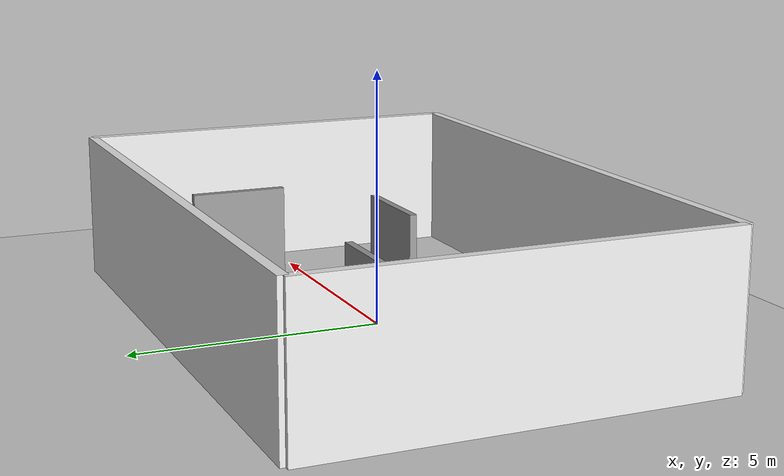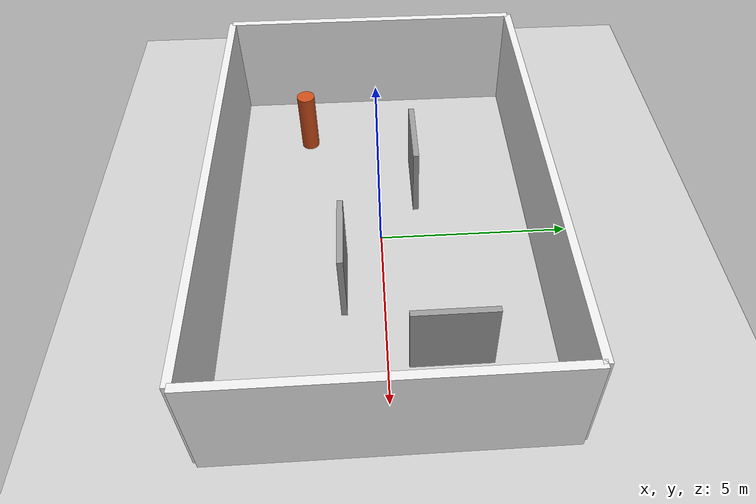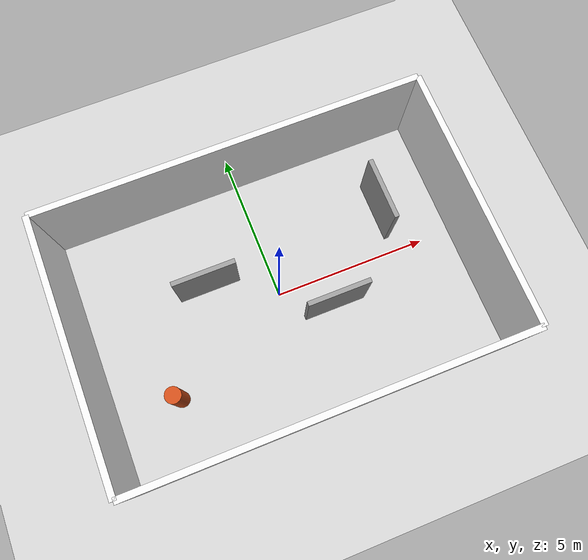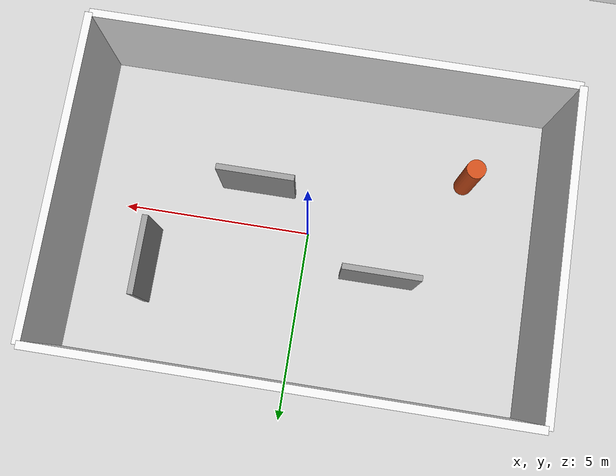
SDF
<?xml version="1.0"?>
<sdf version="1.6">
  <world name="lost_reacquire">

    <physics name="default_physics" default="0" type="ode">
      <max_step_size>0.001</max_step_size>
      <real_time_factor>1.0</real_time_factor>
      <real_time_update_rate>1000</real_time_update_rate>
    </physics>

    <plugin name="gazebo_ros_state" filename="libgazebo_ros_state.so">
      <ros><namespace>/gazebo</namespace></ros>
      <update_rate>10.0</update_rate>
    </plugin>

    <light name="sun" type="directional">
      <cast_shadows>true</cast_shadows>
      <pose>0 0 10 0 0 0</pose>
      <diffuse>0.9 0.9 0.9 1</diffuse>
      <specular>0.3 0.3 0.3 1</specular>
      <direction>-0.5 0.1 -0.9</direction>
    </light>

    <model name="ground_plane">
      <static>true</static>
      <link name="link">
        <collision name="collision">
          <geometry><plane><normal>0 0 1</normal></plane></geometry>
          <surface><friction><ode><mu>100</mu><mu2>50</mu2></ode></friction></surface>
        </collision>
        <visual name="visual">
          <cast_shadows>false</cast_shadows>
          <geometry><plane><normal>0 0 1</normal><size>20 20</size></plane></geometry>
          <material><script><name>Gazebo/Grey</name></script></material>
        </visual>
      </link>
    </model>

    <!-- 外周壁 (内寸 12.0 × 8.0) -->
    <model name="wall_south">
      <static>true</static><pose>0 -4.1 1.5 0 0 0</pose>
      <link name="link">
        <collision name="col"><geometry><box><size>12.2 0.2 3.0</size></box></geometry></collision>
        <visual name="vis"><geometry><box><size>12.2 0.2 3.0</size></box></geometry>
          <material><script><name>Gazebo/White</name></script></material></visual>
      </link>
    </model>
    <model name="wall_north">
      <static>true</static><pose>0 4.1 1.5 0 0 0</pose>
      <link name="link">
        <collision name="col"><geometry><box><size>12.2 0.2 3.0</size></box></geometry></collision>
        <visual name="vis"><geometry><box><size>12.2 0.2 3.0</size></box></geometry>
          <material><script><name>Gazebo/White</name></script></material></visual>
      </link>
    </model>
    <model name="wall_west">
      <static>true</static><pose>-6.1 0 1.5 0 0 0</pose>
      <link name="link">
        <collision name="col"><geometry><box><size>0.2 8.2 3.0</size></box></geometry></collision>
        <visual name="vis"><geometry><box><size>0.2 8.2 3.0</size></box></geometry>
          <material><script><name>Gazebo/White</name></script></material></visual>
      </link>
    </model>
    <model name="wall_east">
      <static>true</static><pose>6.1 0 1.5 0 0 0</pose>
      <link name="link">
        <collision name="col"><geometry><box><size>0.2 8.2 3.0</size></box></geometry></collision>
        <visual name="vis"><geometry><box><size>0.2 8.2 3.0</size></box></geometry>
          <material><script><name>Gazebo/White</name></script></material></visual>
      </link>
    </model>

    <!-- 自立遮蔽板 3 枚 (occlusion_segments と同期必須) -->
    <model name="partition_a">
      <static>true</static><pose>-2.0 1.0 1.0 0 0 0</pose>
      <link name="link">
        <collision name="col"><geometry><box><size>2.0 0.15 2.0</size></box></geometry></collision>
        <visual name="vis"><geometry><box><size>2.0 0.15 2.0</size></box></geometry>
          <material><script><name>Gazebo/Grey</name></script></material></visual>
      </link>
    </model>
    <model name="partition_b">
      <static>true</static><pose>1.5 -1.0 1.0 0 0 0</pose>
      <link name="link">
        <collision name="col"><geometry><box><size>2.0 0.15 2.0</size></box></geometry></collision>
        <visual name="vis"><geometry><box><size>2.0 0.15 2.0</size></box></geometry>
          <material><script><name>Gazebo/Grey</name></script></material></visual>
      </link>
    </model>
    <model name="partition_c">
      <static>true</static><pose>4.0 1.5 1.0 0 0 1.5708</pose>
      <link name="link">
        <collision name="col"><geometry><box><size>2.0 0.15 2.0</size></box></geometry></collision>
        <visual name="vis"><geometry><box><size>2.0 0.15 2.0</size></box></geometry>
          <material><script><name>Gazebo/Grey</name></script></material></visual>
      </link>
    </model>

    <!-- 試験員模擬シリンダー (person_mover が動かす) -->
    <model name="inspector">
      <static>true</static>
      <pose>-4.0 -2.0 0.9 0 0 0</pose>
      <link name="link">
        <collision name="col">
          <geometry><cylinder><radius>0.25</radius><length>1.8</length></cylinder></geometry>
        </collision>
        <visual name="vis">
          <geometry><cylinder><radius>0.25</radius><length>1.8</length></cylinder></geometry>
          <material>
            <ambient>0.8 0.3 0.1 1</ambient>
            <diffuse>0.8 0.3 0.1 1</diffuse>
          </material>
        </visual>
      </link>
    </model>

  </world>
</sdf>
